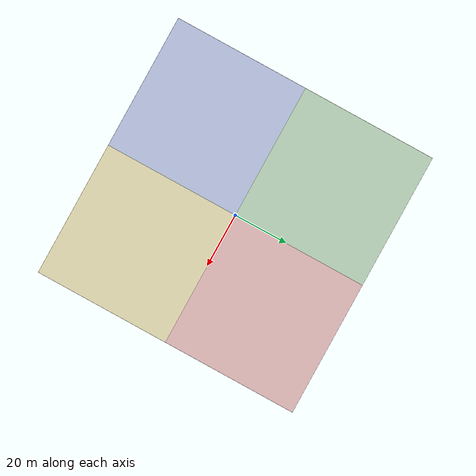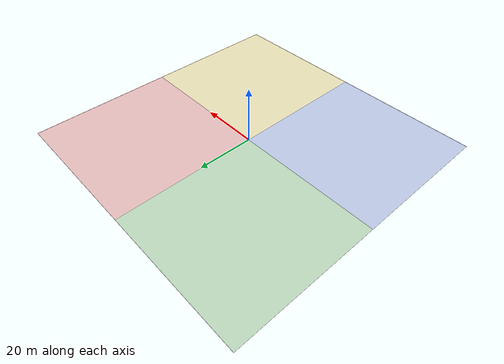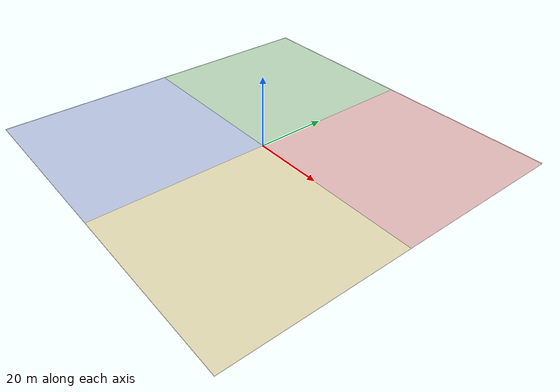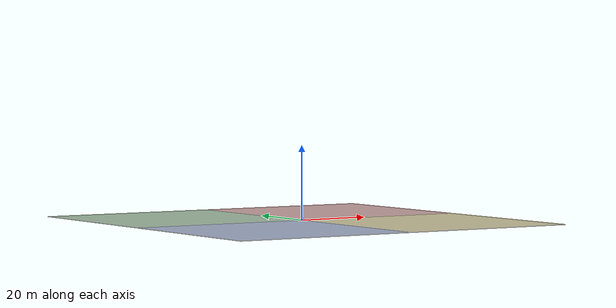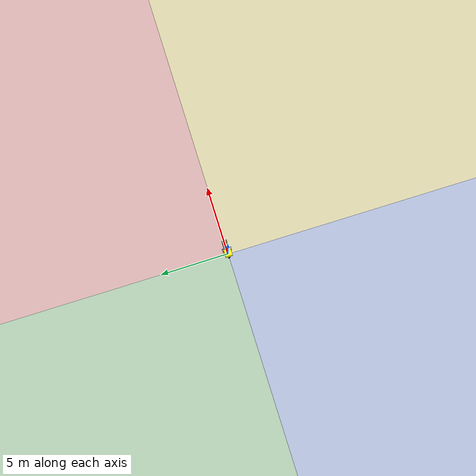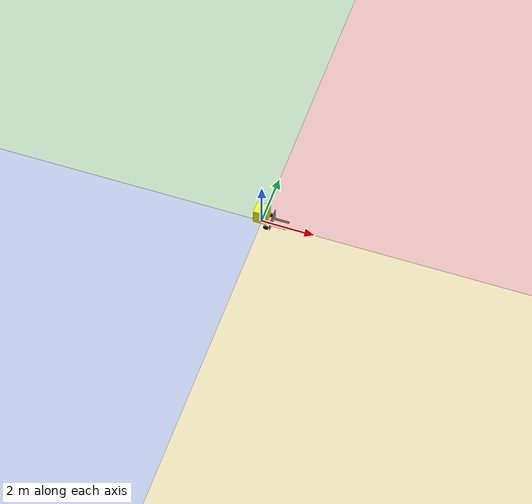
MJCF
<mujoco>
  <option timestep="0.001" density="1.204" viscosity="1.8e-5" integrator="implicit"/>
  <option gravity="0 0 -9.81"/>
  <visual>
    <global elevation="-10"/>
  </visual>
  <default>
    <tendon limited="true" width="0.003" rgba="1 1 1 1"/>
    <geom friction=".2"/>
    <default class="black">
      <geom rgba="0 0 0 1"/>
      <site rgba="0 0 0 1"/>
    </default>
    <default class="yellow">
      <geom rgba="1 1 0 1"/>
      <site rgba="1 1 0 1"/>
    </default>
  </default>
  <asset>
    <texture name="grid" type="2d" builtin="checker" width="512" height="512" rgb2="0 0 0" rgb1="1 1 1"/>
    <material name="grid" texture="grid" texrepeat="2 2" texuniform="true" reflectance=".6"/>
  </asset>

  <worldbody>
    <geom name="ground" type="plane" size="50 50 .05" pos="0 0 0" rgba="0.88 0.88 0.88 1" friction="1.0"/>
    <geom name="zone_ne" type="box" size="25 25 0.001" pos="25 25 0.001" rgba="0.90 0.55 0.55 0.45" contype="0" conaffinity="0"/>
    <geom name="zone_nw" type="box" size="25 25 0.001" pos="-25 25 0.001" rgba="0.55 0.78 0.55 0.45" contype="0" conaffinity="0"/>
    <geom name="zone_sw" type="box" size="25 25 0.001" pos="-25 -25 0.001" rgba="0.55 0.65 0.90 0.45" contype="0" conaffinity="0"/>
    <geom name="zone_se" type="box" size="25 25 0.001" pos="25 -25 0.001" rgba="0.92 0.85 0.50 0.45" contype="0" conaffinity="0"/>

    <body name="forklift_base" pos="0 0 0.5" euler="0 0 0" childclass="yellow">
      <freejoint/>
      <geom name="base" type="box" size="0.25 0.25 0.3" mass="80.0"/>

      <body name="body_guard" pos="0.4 0 -0.25" euler="0 0 0">
        <geom name="body_guard_frame" type="box" size="0.01 0.35 0.2" rgba="0.6 0.6 0.6 1"/>
      </body>

      <body name="lift_arm" pos="0.41 0 -0.35" euler="0 0 0">
        <joint name="lift_joint" type="slide" axis="0 0 1" range="-0.2 0.3" damping="0.1" stiffness="1"/>
        <geom name="lift_frame" type="box" size="0.03 0.3 0.01" rgba="0.6 0.6 0.6 1"/>

        <body name="forks" pos="0.3 0 0.0" euler="0 90 0">
          <geom name="left_fork" type="box" size="0.01 0.04 0.3" pos="0 0.15 0" rgba="0.4 0.4 0.2 1" mass="1.0" friction="3 0.2 0.1"/>
          <geom name="right_fork" type="box" size="0.01 0.04 0.3" pos="0 -0.15 0" rgba="0.4 0.4 0.2 1" mass="1.0" friction="3 0.2 0.1"/>
        </body>
      </body>

      <body name="left_wheel" pos="0.25 0.3 -0.4" euler="90 0 0" childclass="black">
        <joint name="left_wheel_hinge" type="hinge" axis="0 0 -1" damping="0.1"/>
        <geom name="left_wheel_geom" type="cylinder" size="0.1 0.02" density="800" friction="1.0"/>
      </body>

      <body name="right_wheel" pos="0.25 -0.3 -0.4" euler="90 0 0" childclass="black">
        <joint name="right_wheel_hinge" type="hinge" axis="0 0 -1" damping="0.1"/>
        <geom name="right_wheel_geom" type="cylinder" size="0.1 0.02" density="800" friction="1.0"/>
      </body>

      <body name="back_castor" pos="-0.25 0 -0.4" childclass="black">
        <joint name="castor_joint" type="ball" damping="0.01"/>
        <geom name="castor" type="sphere" size="0.1" density="500" friction="1.01"/>
      </body>
    </body>

    <!-- Fixed anchor for RD-lite standby freeze experiment -->
    <body name="forklift_standby_anchor" pos="0 0 0.5"/>
  </worldbody>

  <equality>
    <weld name="forklift_standby_weld" body1="forklift_base" body2="forklift_standby_anchor" active="false"/>
  </equality>

  <actuator>
    <motor name="left_motor" joint="left_wheel_hinge" ctrllimited="true" ctrlrange="-10 10" gear="1.0"/>
    <motor name="right_motor" joint="right_wheel_hinge" ctrllimited="true" ctrlrange="-10 10" gear="1.0"/>
    <motor name="lift_motor" joint="lift_joint" ctrllimited="true" ctrlrange="-0.1 0.5" gear="100.0"/>
  </actuator>
</mujoco>
